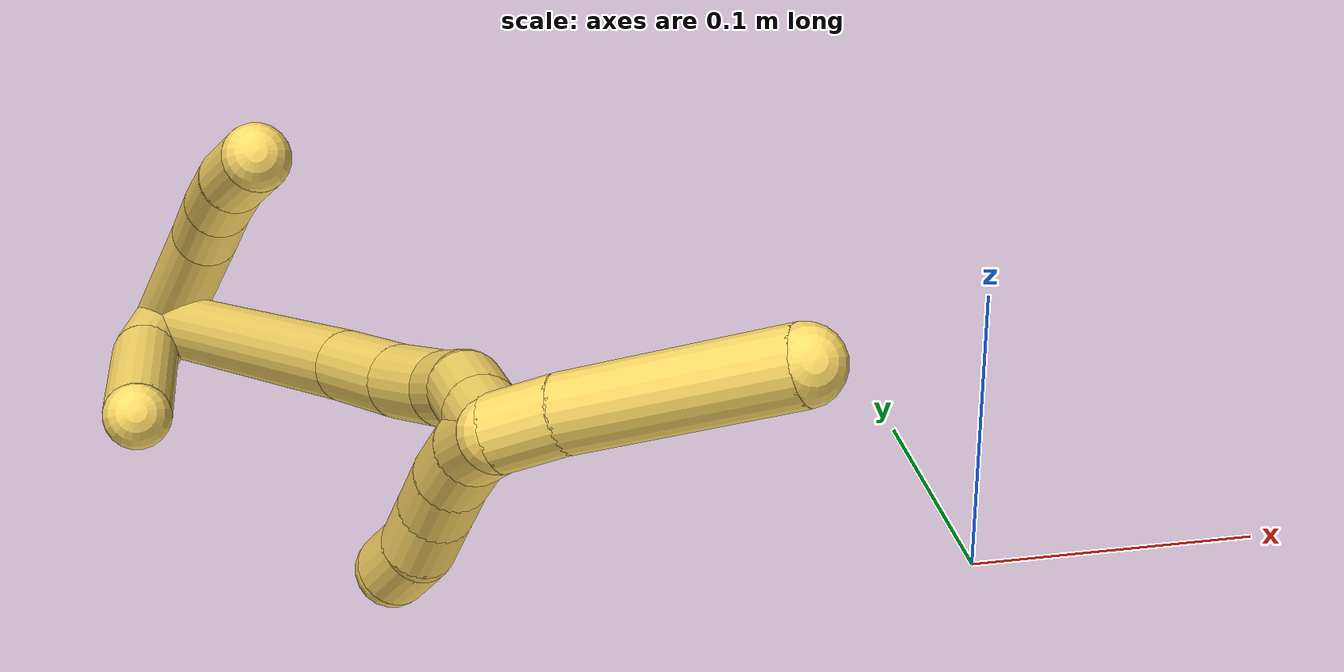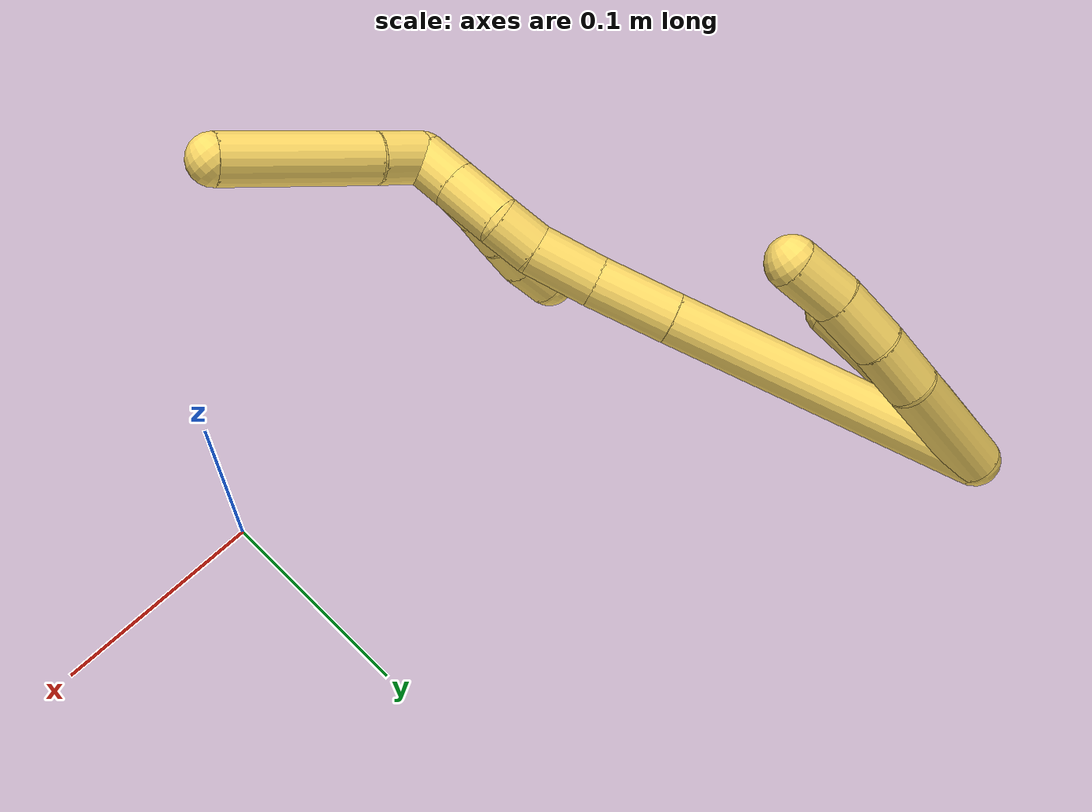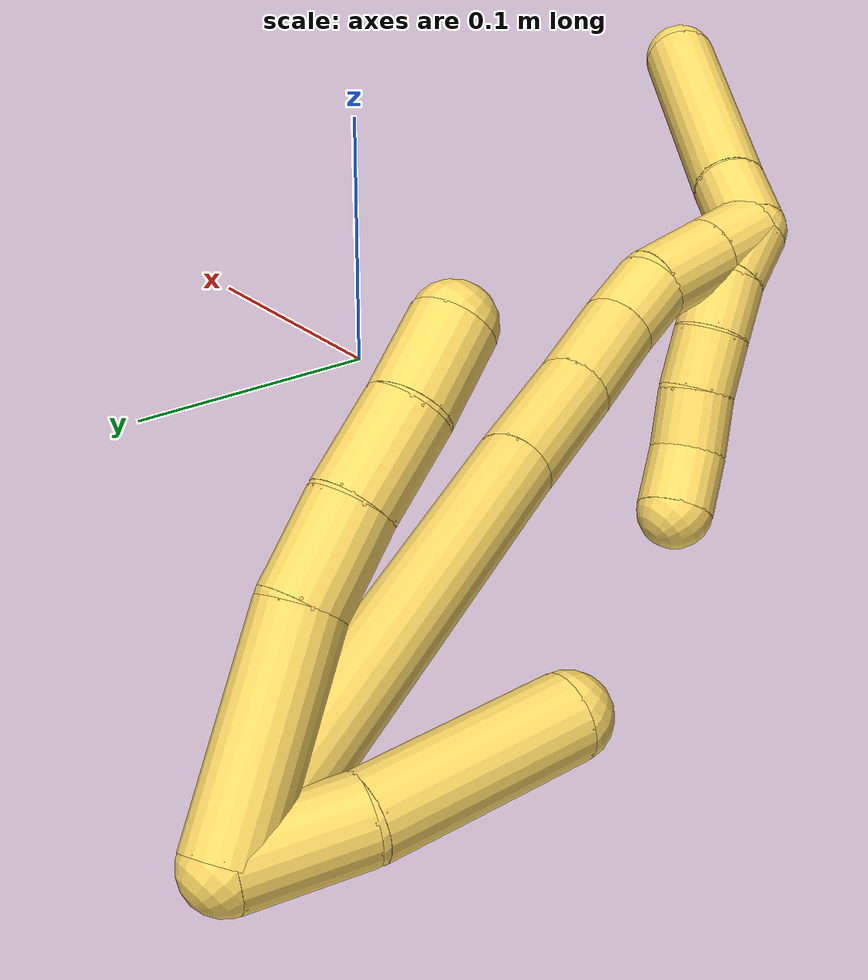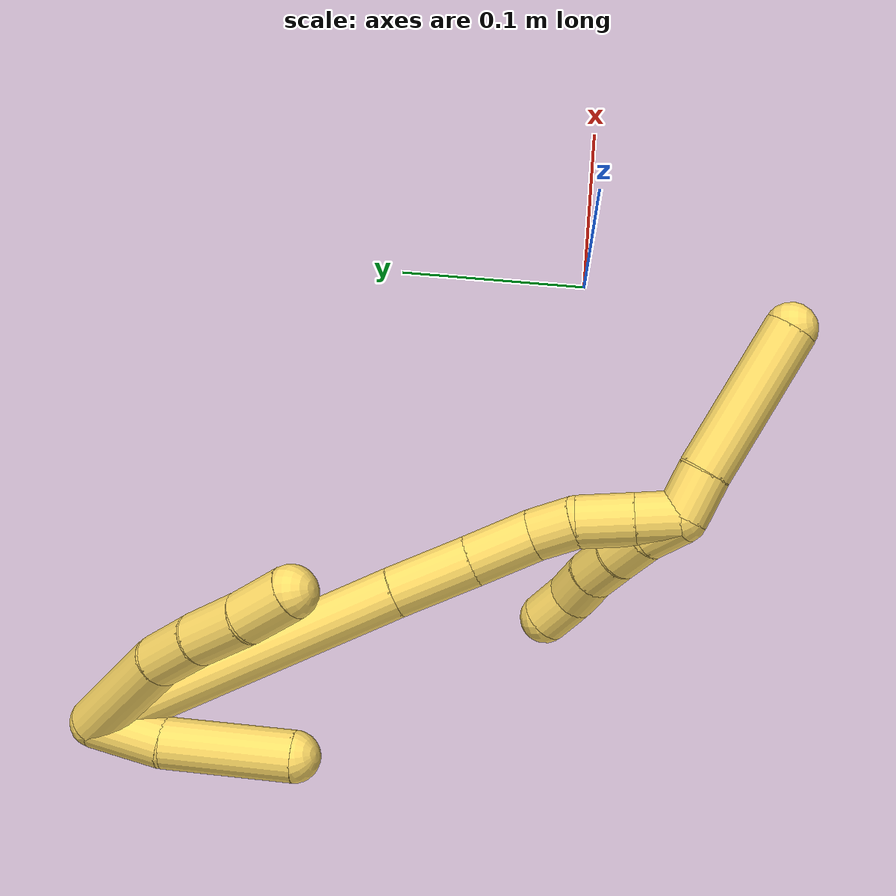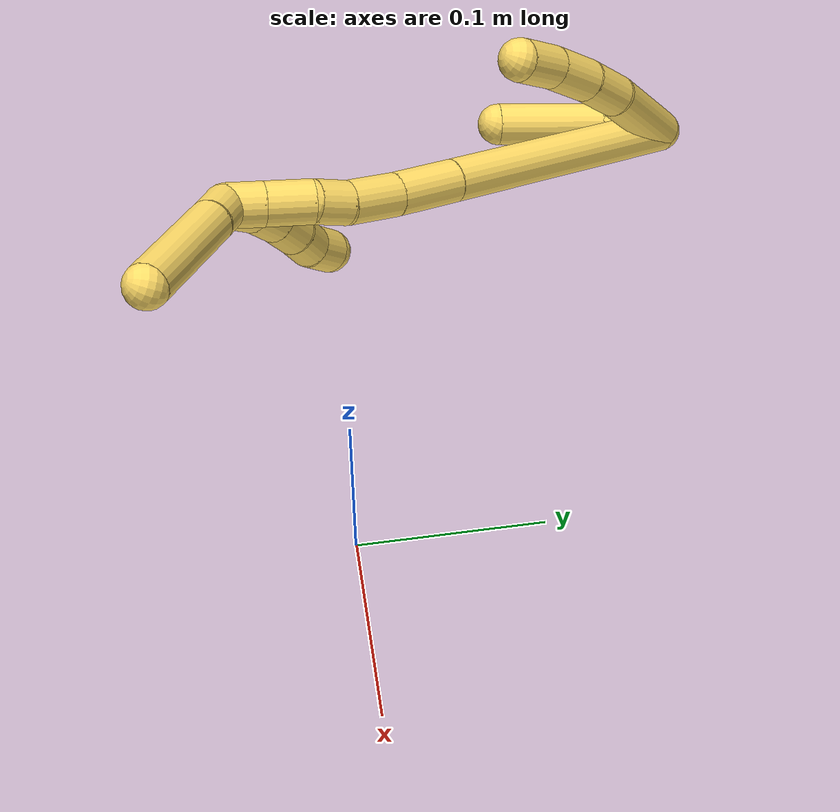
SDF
<sdf version="1.7">
 <world name="default">
  <model name="5">
   <static>0</static>
   <link name="5">
    <collision name="collision-cylinder-e_1_2_8">
     <pose>0.009493 0.011631 0.028688 -0.38517 0.297558 -0.05844</pose>
     <geometry><cylinder><radius>0.0125</radius><length>0.064758</length></cylinder></geometry>
     <surface>
      <friction><ode><mu>1.16</mu><mu2>1.16</mu2><slip1>0</slip1><slip2>0</slip2></ode></friction>
      <contact><ode><kp>1e+06</kp><kd>1</kd><max_vel>0</max_vel><min_depth>0.001</min_depth></ode></contact>
     </surface>
    </collision>
    <visual name="visual-cylinder-e_1_2_8">
     <pose>0.009493 0.011631 0.028688 -0.38517 0.297558 -0.05844</pose>
     <geometry><cylinder><radius>0.0125</radius><length>0.064758</length></cylinder></geometry>
     <material><ambient>1 0.858824 0.4 1</ambient></material>
    </visual>
    <collision name="collision-cylinder-e_2_8_9">
     <pose>0.021835 0.026399 0.071068 -0.225282 0.20007 -0.022707</pose>
     <geometry><cylinder><radius>0.0125</radius><length>0.028665</length></cylinder></geometry>
     <surface>
      <friction><ode><mu>1.16</mu><mu2>1.16</mu2><slip1>0</slip1><slip2>0</slip2></ode></friction>
      <contact><ode><kp>1e+06</kp><kd>1</kd><max_vel>0</max_vel><min_depth>0.001</min_depth></ode></contact>
     </surface>
    </collision>
    <visual name="visual-cylinder-e_2_8_9">
     <pose>0.021835 0.026399 0.071068 -0.225282 0.20007 -0.022707</pose>
     <geometry><cylinder><radius>0.0125</radius><length>0.028665</length></cylinder></geometry>
     <material><ambient>1 0.858824 0.4 1</ambient></material>
    </visual>
    <collision name="collision-cylinder-e_3_9_10">
     <pose>0.027501 0.031329 0.099182 -0.1236 0.191525 -0.011888</pose>
     <geometry><cylinder><radius>0.0125</radius><length>0.029607</length></cylinder></geometry>
     <surface>
      <friction><ode><mu>1.16</mu><mu2>1.16</mu2><slip1>0</slip1><slip2>0</slip2></ode></friction>
      <contact><ode><kp>1e+06</kp><kd>1</kd><max_vel>0</max_vel><min_depth>0.001</min_depth></ode></contact>
     </surface>
    </collision>
    <visual name="visual-cylinder-e_3_9_10">
     <pose>0.027501 0.031329 0.099182 -0.1236 0.191525 -0.011888</pose>
     <geometry><cylinder><radius>0.0125</radius><length>0.029607</length></cylinder></geometry>
     <material><ambient>1 0.858824 0.4 1</ambient></material>
    </visual>
    <collision name="collision-cylinder-e_4_10_6">
     <pose>0.034319 0.034075 0.126446 -0.074182 0.301142 -0.01126</pose>
     <geometry><cylinder><radius>0.0125</radius><length>0.02697</length></cylinder></geometry>
     <surface>
      <friction><ode><mu>1.16</mu><mu2>1.16</mu2><slip1>0</slip1><slip2>0</slip2></ode></friction>
      <contact><ode><kp>1e+06</kp><kd>1</kd><max_vel>0</max_vel><min_depth>0.001</min_depth></ode></contact>
     </surface>
    </collision>
    <visual name="visual-cylinder-e_4_10_6">
     <pose>0.034319 0.034075 0.126446 -0.074182 0.301142 -0.01126</pose>
     <geometry><cylinder><radius>0.0125</radius><length>0.02697</length></cylinder></geometry>
     <material><ambient>1 0.858824 0.4 1</ambient></material>
    </visual>
    <collision name="collision-cylinder-e_1_2_11">
     <pose>-0.004835 -0.007612 0.015737 0.450525 -0.269827 -0.062189</pose>
     <geometry><cylinder><radius>0.0125</radius><length>0.036276</length></cylinder></geometry>
     <surface>
      <friction><ode><mu>1.16</mu><mu2>1.16</mu2><slip1>0</slip1><slip2>0</slip2></ode></friction>
      <contact><ode><kp>1e+06</kp><kd>1</kd><max_vel>0</max_vel><min_depth>0.001</min_depth></ode></contact>
     </surface>
    </collision>
    <visual name="visual-cylinder-e_1_2_11">
     <pose>-0.004835 -0.007612 0.015737 0.450525 -0.269827 -0.062189</pose>
     <geometry><cylinder><radius>0.0125</radius><length>0.036276</length></cylinder></geometry>
     <material><ambient>1 0.858824 0.4 1</ambient></material>
    </visual>
    <collision name="collision-cylinder-e_2_11_5">
     <pose>-0.012452 -0.029035 0.060053 0.450148 -0.087416 -0.020026</pose>
     <geometry><cylinder><radius>0.0125</radius><length>0.063724</length></cylinder></geometry>
     <surface>
      <friction><ode><mu>1.16</mu><mu2>1.16</mu2><slip1>0</slip1><slip2>0</slip2></ode></friction>
      <contact><ode><kp>1e+06</kp><kd>1</kd><max_vel>0</max_vel><min_depth>0.001</min_depth></ode></contact>
     </surface>
    </collision>
    <visual name="visual-cylinder-e_2_11_5">
     <pose>-0.012452 -0.029035 0.060053 0.450148 -0.087416 -0.020026</pose>
     <geometry><cylinder><radius>0.0125</radius><length>0.063724</length></cylinder></geometry>
     <material><ambient>1 0.858824 0.4 1</ambient></material>
    </visual>
    <collision name="collision-cylinder-e_1_2_12">
     <pose>0.02919 -0.020925 0.070917 0.286929 0.375998 0.054951</pose>
     <geometry><cylinder><radius>0.0125</radius><length>0.158985</length></cylinder></geometry>
     <surface>
      <friction><ode><mu>1.16</mu><mu2>1.16</mu2><slip1>0</slip1><slip2>0</slip2></ode></friction>
      <contact><ode><kp>1e+06</kp><kd>1</kd><max_vel>0</max_vel><min_depth>0.001</min_depth></ode></contact>
     </surface>
    </collision>
    <visual name="visual-cylinder-e_1_2_12">
     <pose>0.02919 -0.020925 0.070917 0.286929 0.375998 0.054951</pose>
     <geometry><cylinder><radius>0.0125</radius><length>0.158985</length></cylinder></geometry>
     <material><ambient>1 0.858824 0.4 1</ambient></material>
    </visual>
    <collision name="collision-cylinder-e_2_12_13">
     <pose>0.065374 -0.047416 0.159628 0.303084 0.358895 0.05539</pose>
     <geometry><cylinder><radius>0.0125</radius><length>0.039826</length></cylinder></geometry>
     <surface>
      <friction><ode><mu>1.16</mu><mu2>1.16</mu2><slip1>0</slip1><slip2>0</slip2></ode></friction>
      <contact><ode><kp>1e+06</kp><kd>1</kd><max_vel>0</max_vel><min_depth>0.001</min_depth></ode></contact>
     </surface>
    </collision>
    <visual name="visual-cylinder-e_2_12_13">
     <pose>0.065374 -0.047416 0.159628 0.303084 0.358895 0.05539</pose>
     <geometry><cylinder><radius>0.0125</radius><length>0.039826</length></cylinder></geometry>
     <material><ambient>1 0.858824 0.4 1</ambient></material>
    </visual>
    <collision name="collision-cylinder-e_3_13_14">
     <pose>0.077793 -0.056535 0.192102 0.237566 0.344836 0.041561</pose>
     <geometry><cylinder><radius>0.0125</radius><length>0.032098</length></cylinder></geometry>
     <surface>
      <friction><ode><mu>1.16</mu><mu2>1.16</mu2><slip1>0</slip1><slip2>0</slip2></ode></friction>
      <contact><ode><kp>1e+06</kp><kd>1</kd><max_vel>0</max_vel><min_depth>0.001</min_depth></ode></contact>
     </surface>
    </collision>
    <visual name="visual-cylinder-e_3_13_14">
     <pose>0.077793 -0.056535 0.192102 0.237566 0.344836 0.041561</pose>
     <geometry><cylinder><radius>0.0125</radius><length>0.032098</length></cylinder></geometry>
     <material><ambient>1 0.858824 0.4 1</ambient></material>
    </visual>
    <collision name="collision-cylinder-e_4_14_15">
     <pose>0.085277 -0.061367 0.217103 0.123108 0.195352 0.012078</pose>
     <geometry><cylinder><radius>0.0125</radius><length>0.021203</length></cylinder></geometry>
     <surface>
      <friction><ode><mu>1.16</mu><mu2>1.16</mu2><slip1>0</slip1><slip2>0</slip2></ode></friction>
      <contact><ode><kp>1e+06</kp><kd>1</kd><max_vel>0</max_vel><min_depth>0.001</min_depth></ode></contact>
     </surface>
    </collision>
    <visual name="visual-cylinder-e_4_14_15">
     <pose>0.085277 -0.061367 0.217103 0.123108 0.195352 0.012078</pose>
     <geometry><cylinder><radius>0.0125</radius><length>0.021203</length></cylinder></geometry>
     <material><ambient>1 0.858824 0.4 1</ambient></material>
    </visual>
    <collision name="collision-cylinder-e_5_15_16">
     <pose>0.087737 -0.067857 0.240007 0.392818 0.029568 0.005884</pose>
     <geometry><cylinder><radius>0.0125</radius><length>0.027251</length></cylinder></geometry>
     <surface>
      <friction><ode><mu>1.16</mu><mu2>1.16</mu2><slip1>0</slip1><slip2>0</slip2></ode></friction>
      <contact><ode><kp>1e+06</kp><kd>1</kd><max_vel>0</max_vel><min_depth>0.001</min_depth></ode></contact>
     </surface>
    </collision>
    <visual name="visual-cylinder-e_5_15_16">
     <pose>0.087737 -0.067857 0.240007 0.392818 0.029568 0.005884</pose>
     <geometry><cylinder><radius>0.0125</radius><length>0.027251</length></cylinder></geometry>
     <material><ambient>1 0.858824 0.4 1</ambient></material>
    </visual>
    <collision name="collision-cylinder-e_6_16_1">
     <pose>0.088468 -0.077009 0.26212 0.391868 0.031792 0.006311</pose>
     <geometry><cylinder><radius>0.0125</radius><length>0.020636</length></cylinder></geometry>
     <surface>
      <friction><ode><mu>1.16</mu><mu2>1.16</mu2><slip1>0</slip1><slip2>0</slip2></ode></friction>
      <contact><ode><kp>1e+06</kp><kd>1</kd><max_vel>0</max_vel><min_depth>0.001</min_depth></ode></contact>
     </surface>
    </collision>
    <visual name="visual-cylinder-e_6_16_1">
     <pose>0.088468 -0.077009 0.26212 0.391868 0.031792 0.006311</pose>
     <geometry><cylinder><radius>0.0125</radius><length>0.020636</length></cylinder></geometry>
     <material><ambient>1 0.858824 0.4 1</ambient></material>
    </visual>
    <collision name="collision-cylinder-e_1_1_17">
     <pose>0.098443 -0.080011 0.278014 -0.146193 0.982826 -0.078343</pose>
     <geometry><cylinder><radius>0.0125</radius><length>0.023188</length></cylinder></geometry>
     <surface>
      <friction><ode><mu>1.16</mu><mu2>1.16</mu2><slip1>0</slip1><slip2>0</slip2></ode></friction>
      <contact><ode><kp>1e+06</kp><kd>1</kd><max_vel>0</max_vel><min_depth>0.001</min_depth></ode></contact>
     </surface>
    </collision>
    <visual name="visual-cylinder-e_1_1_17">
     <pose>0.098443 -0.080011 0.278014 -0.146193 0.982826 -0.078343</pose>
     <geometry><cylinder><radius>0.0125</radius><length>0.023188</length></cylinder></geometry>
     <material><ambient>1 0.858824 0.4 1</ambient></material>
    </visual>
    <collision name="collision-cylinder-e_2_17_4">
     <pose>0.13944 -0.079016 0.306561 -0.002637 0.954951 -0.001364</pose>
     <geometry><cylinder><radius>0.0125</radius><length>0.076812</length></cylinder></geometry>
     <surface>
      <friction><ode><mu>1.16</mu><mu2>1.16</mu2><slip1>0</slip1><slip2>0</slip2></ode></friction>
      <contact><ode><kp>1e+06</kp><kd>1</kd><max_vel>0</max_vel><min_depth>0.001</min_depth></ode></contact>
     </surface>
    </collision>
    <visual name="visual-cylinder-e_2_17_4">
     <pose>0.13944 -0.079016 0.306561 -0.002637 0.954951 -0.001364</pose>
     <geometry><cylinder><radius>0.0125</radius><length>0.076812</length></cylinder></geometry>
     <material><ambient>1 0.858824 0.4 1</ambient></material>
    </visual>
    <collision name="collision-cylinder-e_1_1_18">
     <pose>0.086131 -0.081832 0.262054 3.04973 -0.269711 -2.48833</pose>
     <geometry><cylinder><radius>0.0125</radius><length>0.02</length></cylinder></geometry>
     <surface>
      <friction><ode><mu>1.16</mu><mu2>1.16</mu2><slip1>0</slip1><slip2>0</slip2></ode></friction>
      <contact><ode><kp>1e+06</kp><kd>1</kd><max_vel>0</max_vel><min_depth>0.001</min_depth></ode></contact>
     </surface>
    </collision>
    <visual name="visual-cylinder-e_1_1_18">
     <pose>0.086131 -0.081832 0.262054 3.04973 -0.269711 -2.48833</pose>
     <geometry><cylinder><radius>0.0125</radius><length>0.02</length></cylinder></geometry>
     <material><ambient>1 0.858824 0.4 1</ambient></material>
    </visual>
    <collision name="collision-cylinder-e_2_18_19">
     <pose>0.080694 -0.08623 0.243513 2.76725 -0.280943 -1.28268</pose>
     <geometry><cylinder><radius>0.0125</radius><length>0.02</length></cylinder></geometry>
     <surface>
      <friction><ode><mu>1.16</mu><mu2>1.16</mu2><slip1>0</slip1><slip2>0</slip2></ode></friction>
      <contact><ode><kp>1e+06</kp><kd>1</kd><max_vel>0</max_vel><min_depth>0.001</min_depth></ode></contact>
     </surface>
    </collision>
    <visual name="visual-cylinder-e_2_18_19">
     <pose>0.080694 -0.08623 0.243513 2.76725 -0.280943 -1.28268</pose>
     <geometry><cylinder><radius>0.0125</radius><length>0.02</length></cylinder></geometry>
     <material><ambient>1 0.858824 0.4 1</ambient></material>
    </visual>
    <collision name="collision-cylinder-e_3_19_20">
     <pose>0.075531 -0.094025 0.225856 2.68493 -0.241369 -0.96198</pose>
     <geometry><cylinder><radius>0.0125</radius><length>0.02</length></cylinder></geometry>
     <surface>
      <friction><ode><mu>1.16</mu><mu2>1.16</mu2><slip1>0</slip1><slip2>0</slip2></ode></friction>
      <contact><ode><kp>1e+06</kp><kd>1</kd><max_vel>0</max_vel><min_depth>0.001</min_depth></ode></contact>
     </surface>
    </collision>
    <visual name="visual-cylinder-e_3_19_20">
     <pose>0.075531 -0.094025 0.225856 2.68493 -0.241369 -0.96198</pose>
     <geometry><cylinder><radius>0.0125</radius><length>0.02</length></cylinder></geometry>
     <material><ambient>1 0.858824 0.4 1</ambient></material>
    </visual>
    <collision name="collision-cylinder-e_4_20_21">
     <pose>0.070177 -0.103382 0.20905 2.5813 -0.300877 -0.969804</pose>
     <geometry><cylinder><radius>0.0125</radius><length>0.02</length></cylinder></geometry>
     <surface>
      <friction><ode><mu>1.16</mu><mu2>1.16</mu2><slip1>0</slip1><slip2>0</slip2></ode></friction>
      <contact><ode><kp>1e+06</kp><kd>1</kd><max_vel>0</max_vel><min_depth>0.001</min_depth></ode></contact>
     </surface>
    </collision>
    <visual name="visual-cylinder-e_4_20_21">
     <pose>0.070177 -0.103382 0.20905 2.5813 -0.300877 -0.969804</pose>
     <geometry><cylinder><radius>0.0125</radius><length>0.02</length></cylinder></geometry>
     <material><ambient>1 0.858824 0.4 1</ambient></material>
    </visual>
    <collision name="collision-cylinder-e_5_21_3">
     <pose>0.063433 -0.111225 0.192125 2.838 -0.387745 -1.81782</pose>
     <geometry><cylinder><radius>0.0125</radius><length>0.02</length></cylinder></geometry>
     <surface>
      <friction><ode><mu>1.16</mu><mu2>1.16</mu2><slip1>0</slip1><slip2>0</slip2></ode></friction>
      <contact><ode><kp>1e+06</kp><kd>1</kd><max_vel>0</max_vel><min_depth>0.001</min_depth></ode></contact>
     </surface>
    </collision>
    <visual name="visual-cylinder-e_5_21_3">
     <pose>0.063433 -0.111225 0.192125 2.838 -0.387745 -1.81782</pose>
     <geometry><cylinder><radius>0.0125</radius><length>0.02</length></cylinder></geometry>
     <material><ambient>1 0.858824 0.4 1</ambient></material>
    </visual>
    <collision name="collision-sphere-3">
     <pose>0.059652 -0.113993 0.183291 0 -0 0</pose>
     <geometry><sphere><radius>0.0125</radius></sphere></geometry>
     <surface>
      <friction><ode><mu>1.16</mu><mu2>1.16</mu2><slip1>0</slip1><slip2>0</slip2></ode></friction>
      <contact><ode><kp>1e+06</kp><kd>1</kd><max_vel>0</max_vel><min_depth>0.001</min_depth></ode></contact>
     </surface>
    </collision>
    <visual name="visual-sphere-3">
     <pose>0.059652 -0.113993 0.183291 0 -0 0</pose>
     <geometry><sphere><radius>0.0125</radius></sphere></geometry>
     <material><ambient>1 0.858824 0.4 1</ambient></material>
    </visual>
    <collision name="collision-sphere-21">
     <pose>0.067214 -0.108457 0.20096 0 -0 0</pose>
     <geometry><sphere><radius>0.0125</radius></sphere></geometry>
     <surface>
      <friction><ode><mu>1.16</mu><mu2>1.16</mu2><slip1>0</slip1><slip2>0</slip2></ode></friction>
      <contact><ode><kp>1e+06</kp><kd>1</kd><max_vel>0</max_vel><min_depth>0.001</min_depth></ode></contact>
     </surface>
    </collision>
    <visual name="visual-sphere-21">
     <pose>0.067214 -0.108457 0.20096 0 -0 0</pose>
     <geometry><sphere><radius>0.0125</radius></sphere></geometry>
     <material><ambient>1 0.858824 0.4 1</ambient></material>
    </visual>
    <collision name="collision-sphere-20">
     <pose>0.073141 -0.098306 0.21714 0 -0 0</pose>
     <geometry><sphere><radius>0.0125</radius></sphere></geometry>
     <surface>
      <friction><ode><mu>1.16</mu><mu2>1.16</mu2><slip1>0</slip1><slip2>0</slip2></ode></friction>
      <contact><ode><kp>1e+06</kp><kd>1</kd><max_vel>0</max_vel><min_depth>0.001</min_depth></ode></contact>
     </surface>
    </collision>
    <visual name="visual-sphere-20">
     <pose>0.073141 -0.098306 0.21714 0 -0 0</pose>
     <geometry><sphere><radius>0.0125</radius></sphere></geometry>
     <material><ambient>1 0.858824 0.4 1</ambient></material>
    </visual>
    <collision name="collision-sphere-19">
     <pose>0.077922 -0.089743 0.234571 0 -0 0</pose>
     <geometry><sphere><radius>0.0125</radius></sphere></geometry>
     <surface>
      <friction><ode><mu>1.16</mu><mu2>1.16</mu2><slip1>0</slip1><slip2>0</slip2></ode></friction>
      <contact><ode><kp>1e+06</kp><kd>1</kd><max_vel>0</max_vel><min_depth>0.001</min_depth></ode></contact>
     </surface>
    </collision>
    <visual name="visual-sphere-19">
     <pose>0.077922 -0.089743 0.234571 0 -0 0</pose>
     <geometry><sphere><radius>0.0125</radius></sphere></geometry>
     <material><ambient>1 0.858824 0.4 1</ambient></material>
    </visual>
    <collision name="collision-sphere-11">
     <pose>-0.00967 -0.015224 0.031474 0 -0 0</pose>
     <geometry><sphere><radius>0.0125</radius></sphere></geometry>
     <surface>
      <friction><ode><mu>1.16</mu><mu2>1.16</mu2><slip1>0</slip1><slip2>0</slip2></ode></friction>
      <contact><ode><kp>1e+06</kp><kd>1</kd><max_vel>0</max_vel><min_depth>0.001</min_depth></ode></contact>
     </surface>
    </collision>
    <visual name="visual-sphere-11">
     <pose>-0.00967 -0.015224 0.031474 0 -0 0</pose>
     <geometry><sphere><radius>0.0125</radius></sphere></geometry>
     <material><ambient>1 0.858824 0.4 1</ambient></material>
    </visual>
    <collision name="collision-sphere-6">
     <pose>0.038318 0.035029 0.139289 0 -0 0</pose>
     <geometry><sphere><radius>0.0125</radius></sphere></geometry>
     <surface>
      <friction><ode><mu>1.16</mu><mu2>1.16</mu2><slip1>0</slip1><slip2>0</slip2></ode></friction>
      <contact><ode><kp>1e+06</kp><kd>1</kd><max_vel>0</max_vel><min_depth>0.001</min_depth></ode></contact>
     </surface>
    </collision>
    <visual name="visual-sphere-6">
     <pose>0.038318 0.035029 0.139289 0 -0 0</pose>
     <geometry><sphere><radius>0.0125</radius></sphere></geometry>
     <material><ambient>1 0.858824 0.4 1</ambient></material>
    </visual>
    <collision name="collision-sphere-10">
     <pose>0.030319 0.03312 0.113603 0 -0 0</pose>
     <geometry><sphere><radius>0.0125</radius></sphere></geometry>
     <surface>
      <friction><ode><mu>1.16</mu><mu2>1.16</mu2><slip1>0</slip1><slip2>0</slip2></ode></friction>
      <contact><ode><kp>1e+06</kp><kd>1</kd><max_vel>0</max_vel><min_depth>0.001</min_depth></ode></contact>
     </surface>
    </collision>
    <visual name="visual-sphere-10">
     <pose>0.030319 0.03312 0.113603 0 -0 0</pose>
     <geometry><sphere><radius>0.0125</radius></sphere></geometry>
     <material><ambient>1 0.858824 0.4 1</ambient></material>
    </visual>
    <collision name="collision-sphere-9">
     <pose>0.024683 0.029537 0.08476 0 -0 0</pose>
     <geometry><sphere><radius>0.0125</radius></sphere></geometry>
     <surface>
      <friction><ode><mu>1.16</mu><mu2>1.16</mu2><slip1>0</slip1><slip2>0</slip2></ode></friction>
      <contact><ode><kp>1e+06</kp><kd>1</kd><max_vel>0</max_vel><min_depth>0.001</min_depth></ode></contact>
     </surface>
    </collision>
    <visual name="visual-sphere-9">
     <pose>0.024683 0.029537 0.08476 0 -0 0</pose>
     <geometry><sphere><radius>0.0125</radius></sphere></geometry>
     <material><ambient>1 0.858824 0.4 1</ambient></material>
    </visual>
    <collision name="collision-sphere-2">
     <geometry><sphere><radius>0.0125</radius></sphere></geometry>
     <surface>
      <friction><ode><mu>1.16</mu><mu2>1.16</mu2><slip1>0</slip1><slip2>0</slip2></ode></friction>
      <contact><ode><kp>1e+06</kp><kd>1</kd><max_vel>0</max_vel><min_depth>0.001</min_depth></ode></contact>
     </surface>
    </collision>
    <visual name="visual-sphere-2">
     <geometry><sphere><radius>0.0125</radius></sphere></geometry>
     <material><ambient>1 0.858824 0.4 1</ambient></material>
    </visual>
    <collision name="collision-sphere-8">
     <pose>0.018986 0.023262 0.057377 0 -0 0</pose>
     <geometry><sphere><radius>0.0125</radius></sphere></geometry>
     <surface>
      <friction><ode><mu>1.16</mu><mu2>1.16</mu2><slip1>0</slip1><slip2>0</slip2></ode></friction>
      <contact><ode><kp>1e+06</kp><kd>1</kd><max_vel>0</max_vel><min_depth>0.001</min_depth></ode></contact>
     </surface>
    </collision>
    <visual name="visual-sphere-8">
     <pose>0.018986 0.023262 0.057377 0 -0 0</pose>
     <geometry><sphere><radius>0.0125</radius></sphere></geometry>
     <material><ambient>1 0.858824 0.4 1</ambient></material>
    </visual>
    <collision name="collision-sphere-5">
     <pose>-0.015233 -0.042845 0.088632 0 -0 0</pose>
     <geometry><sphere><radius>0.0125</radius></sphere></geometry>
     <surface>
      <friction><ode><mu>1.16</mu><mu2>1.16</mu2><slip1>0</slip1><slip2>0</slip2></ode></friction>
      <contact><ode><kp>1e+06</kp><kd>1</kd><max_vel>0</max_vel><min_depth>0.001</min_depth></ode></contact>
     </surface>
    </collision>
    <visual name="visual-sphere-5">
     <pose>-0.015233 -0.042845 0.088632 0 -0 0</pose>
     <geometry><sphere><radius>0.0125</radius></sphere></geometry>
     <material><ambient>1 0.858824 0.4 1</ambient></material>
    </visual>
    <collision name="collision-sphere-12">
     <pose>0.05838 -0.041851 0.141833 0 -0 0</pose>
     <geometry><sphere><radius>0.0125</radius></sphere></geometry>
     <surface>
      <friction><ode><mu>1.16</mu><mu2>1.16</mu2><slip1>0</slip1><slip2>0</slip2></ode></friction>
      <contact><ode><kp>1e+06</kp><kd>1</kd><max_vel>0</max_vel><min_depth>0.001</min_depth></ode></contact>
     </surface>
    </collision>
    <visual name="visual-sphere-12">
     <pose>0.05838 -0.041851 0.141833 0 -0 0</pose>
     <geometry><sphere><radius>0.0125</radius></sphere></geometry>
     <material><ambient>1 0.858824 0.4 1</ambient></material>
    </visual>
    <collision name="collision-sphere-13">
     <pose>0.072368 -0.05298 0.177422 0 -0 0</pose>
     <geometry><sphere><radius>0.0125</radius></sphere></geometry>
     <surface>
      <friction><ode><mu>1.16</mu><mu2>1.16</mu2><slip1>0</slip1><slip2>0</slip2></ode></friction>
      <contact><ode><kp>1e+06</kp><kd>1</kd><max_vel>0</max_vel><min_depth>0.001</min_depth></ode></contact>
     </surface>
    </collision>
    <visual name="visual-sphere-13">
     <pose>0.072368 -0.05298 0.177422 0 -0 0</pose>
     <geometry><sphere><radius>0.0125</radius></sphere></geometry>
     <material><ambient>1 0.858824 0.4 1</ambient></material>
    </visual>
    <collision name="collision-sphere-14">
     <pose>0.083219 -0.060089 0.206782 0 -0 0</pose>
     <geometry><sphere><radius>0.0125</radius></sphere></geometry>
     <surface>
      <friction><ode><mu>1.16</mu><mu2>1.16</mu2><slip1>0</slip1><slip2>0</slip2></ode></friction>
      <contact><ode><kp>1e+06</kp><kd>1</kd><max_vel>0</max_vel><min_depth>0.001</min_depth></ode></contact>
     </surface>
    </collision>
    <visual name="visual-sphere-14">
     <pose>0.083219 -0.060089 0.206782 0 -0 0</pose>
     <geometry><sphere><radius>0.0125</radius></sphere></geometry>
     <material><ambient>1 0.858824 0.4 1</ambient></material>
    </visual>
    <collision name="collision-sphere-15">
     <pose>0.087334 -0.062644 0.227424 0 -0 0</pose>
     <geometry><sphere><radius>0.0125</radius></sphere></geometry>
     <surface>
      <friction><ode><mu>1.16</mu><mu2>1.16</mu2><slip1>0</slip1><slip2>0</slip2></ode></friction>
      <contact><ode><kp>1e+06</kp><kd>1</kd><max_vel>0</max_vel><min_depth>0.001</min_depth></ode></contact>
     </surface>
    </collision>
    <visual name="visual-sphere-15">
     <pose>0.087334 -0.062644 0.227424 0 -0 0</pose>
     <geometry><sphere><radius>0.0125</radius></sphere></geometry>
     <material><ambient>1 0.858824 0.4 1</ambient></material>
    </visual>
    <collision name="collision-sphere-16">
     <pose>0.08814 -0.073071 0.252589 0 -0 0</pose>
     <geometry><sphere><radius>0.0125</radius></sphere></geometry>
     <surface>
      <friction><ode><mu>1.16</mu><mu2>1.16</mu2><slip1>0</slip1><slip2>0</slip2></ode></friction>
      <contact><ode><kp>1e+06</kp><kd>1</kd><max_vel>0</max_vel><min_depth>0.001</min_depth></ode></contact>
     </surface>
    </collision>
    <visual name="visual-sphere-16">
     <pose>0.08814 -0.073071 0.252589 0 -0 0</pose>
     <geometry><sphere><radius>0.0125</radius></sphere></geometry>
     <material><ambient>1 0.858824 0.4 1</ambient></material>
    </visual>
    <collision name="collision-sphere-1">
     <pose>0.088796 -0.080948 0.271652 0 -0 0</pose>
     <geometry><sphere><radius>0.0125</radius></sphere></geometry>
     <surface>
      <friction><ode><mu>1.16</mu><mu2>1.16</mu2><slip1>0</slip1><slip2>0</slip2></ode></friction>
      <contact><ode><kp>1e+06</kp><kd>1</kd><max_vel>0</max_vel><min_depth>0.001</min_depth></ode></contact>
     </surface>
    </collision>
    <visual name="visual-sphere-1">
     <pose>0.088796 -0.080948 0.271652 0 -0 0</pose>
     <geometry><sphere><radius>0.0125</radius></sphere></geometry>
     <material><ambient>1 0.858824 0.4 1</ambient></material>
    </visual>
    <collision name="collision-sphere-18">
     <pose>0.083467 -0.082716 0.252456 0 -0 0</pose>
     <geometry><sphere><radius>0.0125</radius></sphere></geometry>
     <surface>
      <friction><ode><mu>1.16</mu><mu2>1.16</mu2><slip1>0</slip1><slip2>0</slip2></ode></friction>
      <contact><ode><kp>1e+06</kp><kd>1</kd><max_vel>0</max_vel><min_depth>0.001</min_depth></ode></contact>
     </surface>
    </collision>
    <visual name="visual-sphere-18">
     <pose>0.083467 -0.082716 0.252456 0 -0 0</pose>
     <geometry><sphere><radius>0.0125</radius></sphere></geometry>
     <material><ambient>1 0.858824 0.4 1</ambient></material>
    </visual>
    <collision name="collision-sphere-17">
     <pose>0.10809 -0.079074 0.284376 0 -0 0</pose>
     <geometry><sphere><radius>0.0125</radius></sphere></geometry>
     <surface>
      <friction><ode><mu>1.16</mu><mu2>1.16</mu2><slip1>0</slip1><slip2>0</slip2></ode></friction>
      <contact><ode><kp>1e+06</kp><kd>1</kd><max_vel>0</max_vel><min_depth>0.001</min_depth></ode></contact>
     </surface>
    </collision>
    <visual name="visual-sphere-17">
     <pose>0.10809 -0.079074 0.284376 0 -0 0</pose>
     <geometry><sphere><radius>0.0125</radius></sphere></geometry>
     <material><ambient>1 0.858824 0.4 1</ambient></material>
    </visual>
    <collision name="collision-sphere-4">
     <pose>0.17079 -0.078957 0.328746 0 -0 0</pose>
     <geometry><sphere><radius>0.0125</radius></sphere></geometry>
     <surface>
      <friction><ode><mu>1.16</mu><mu2>1.16</mu2><slip1>0</slip1><slip2>0</slip2></ode></friction>
      <contact><ode><kp>1e+06</kp><kd>1</kd><max_vel>0</max_vel><min_depth>0.001</min_depth></ode></contact>
     </surface>
    </collision>
    <visual name="visual-sphere-4">
     <pose>0.17079 -0.078957 0.328746 0 -0 0</pose>
     <geometry><sphere><radius>0.0125</radius></sphere></geometry>
     <material><ambient>1 0.858824 0.4 1</ambient></material>
    </visual>
    <inertial>
     <pose>0.051054 -0.03733 0.143515 0 -0 0</pose>
     <mass>0.75</mass>
     <inertia>
      <ixx>0.000443</ixx>
      <ixy>0</ixy>
      <ixz>0</ixz>
      <iyy>0.000447</iyy>
      <iyz>0</iyz>
      <izz>-3.3e-05</izz>
     </inertia>
    </inertial>
   </link>
   <pose>-0.266535 0.221402 0.011624 1.01478 -0.046887 0.056487</pose>
  </model>
 </world>
</sdf>
